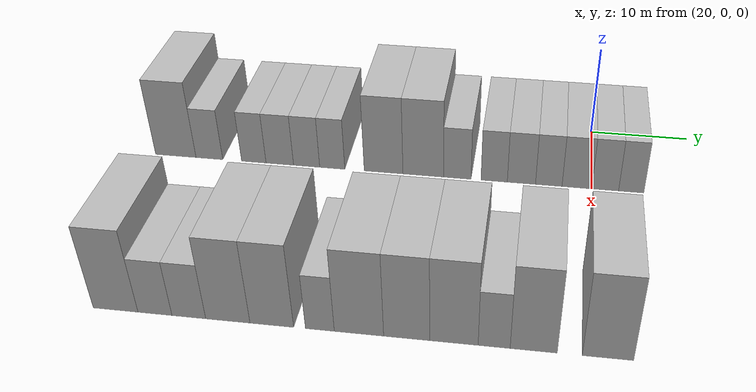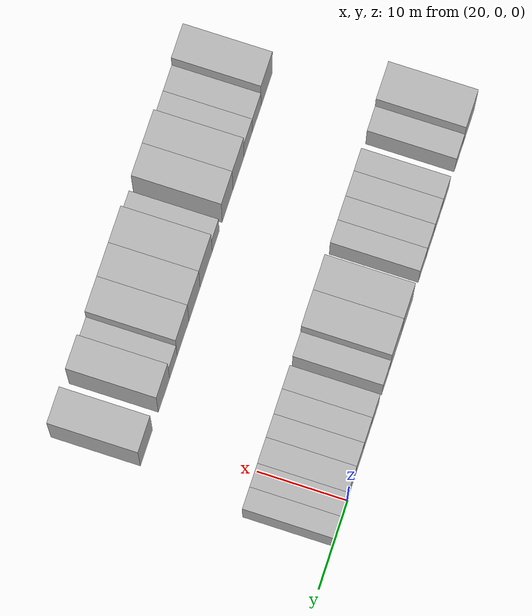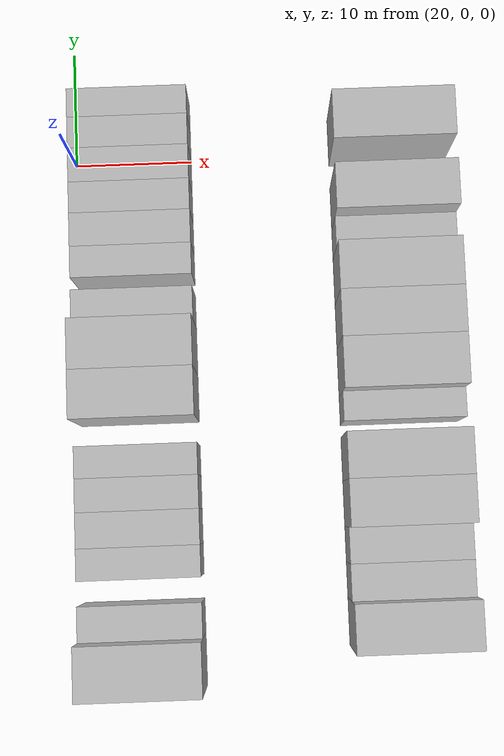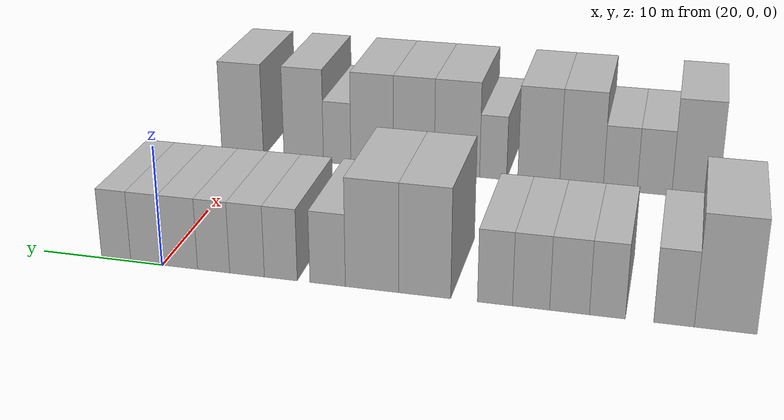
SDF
<sdf version="1.6">
 <world name="default">
  <model name="building_36">
   <static>1</static>
   <pose>25.0000 -42.6026 0 0.000000 0.000000 0.000000</pose>
   <link name="link">
    <pose>0 0 4.50 0 0 0</pose>
    <collision name="collision"><geometry><box><size>10.0000 4.3273 9.0000</size></box></geometry></collision>
    <visual name="visual">
     <cast_shadows>0</cast_shadows>
     <geometry><box><size>10.0000 4.3273 9.0000</size></box></geometry>
     <material>
      <script>
       <uri>model://HANNAS_wall/materials/scripts</uri>
       <uri>model://HANNAS_wall/materials/textures</uri>
       <name>vrc/HANNAS_wall</name>
      </script>
     </material>
    </visual>
   </link>
  </model>
  <model name="building_37">
   <static>1</static>
   <pose>25.0000 -39.0143 0 0.000000 0.000000 0.000000</pose>
   <link name="link">
    <pose>0 0 3.00 0 0 0</pose>
    <collision name="collision"><geometry><box><size>10.0000 2.8494 6.0000</size></box></geometry></collision>
    <visual name="visual">
     <cast_shadows>0</cast_shadows>
     <geometry><box><size>10.0000 2.8494 6.0000</size></box></geometry>
     <material>
      <script>
       <uri>model://HANNAS_wall/materials/scripts</uri>
       <uri>model://HANNAS_wall/materials/textures</uri>
       <name>vrc/HANNAS_wall</name>
      </script>
     </material>
    </visual>
   </link>
  </model>
  <model name="building_38">
   <static>1</static>
   <pose>25.0000 -34.3015 0 0.000000 0.000000 0.000000</pose>
   <link name="link">
    <pose>0 0 3.00 0 0 0</pose>
    <collision name="collision"><geometry><box><size>10.0000 2.5761 6.0000</size></box></geometry></collision>
    <visual name="visual">
     <cast_shadows>0</cast_shadows>
     <geometry><box><size>10.0000 2.5761 6.0000</size></box></geometry>
     <material>
      <script>
       <uri>model://HANNAS_wall/materials/scripts</uri>
       <uri>model://HANNAS_wall/materials/textures</uri>
       <name>vrc/HANNAS_wall</name>
      </script>
     </material>
    </visual>
   </link>
  </model>
  <model name="building_39">
   <static>1</static>
   <pose>25.0000 -31.5714 0 0.000000 0.000000 0.000000</pose>
   <link name="link">
    <pose>0 0 3.00 0 0 0</pose>
    <collision name="collision"><geometry><box><size>10.0000 2.8842 6.0000</size></box></geometry></collision>
    <visual name="visual">
     <cast_shadows>0</cast_shadows>
     <geometry><box><size>10.0000 2.8842 6.0000</size></box></geometry>
     <material>
      <script>
       <uri>model://HANNAS_wall/materials/scripts</uri>
       <uri>model://HANNAS_wall/materials/textures</uri>
       <name>vrc/HANNAS_wall</name>
      </script>
     </material>
    </visual>
   </link>
  </model>
  <model name="building_40">
   <static>1</static>
   <pose>25.0000 -28.7676 0 0.000000 0.000000 0.000000</pose>
   <link name="link">
    <pose>0 0 3.00 0 0 0</pose>
    <collision name="collision"><geometry><box><size>10.0000 2.7235 6.0000</size></box></geometry></collision>
    <visual name="visual">
     <cast_shadows>0</cast_shadows>
     <geometry><box><size>10.0000 2.7235 6.0000</size></box></geometry>
     <material>
      <script>
       <uri>model://HANNAS_wall/materials/scripts</uri>
       <uri>model://HANNAS_wall/materials/textures</uri>
       <name>vrc/HANNAS_wall</name>
      </script>
     </material>
    </visual>
   </link>
  </model>
  <model name="building_41">
   <static>1</static>
   <pose>25.0000 -26.1054 0 0.000000 0.000000 0.000000</pose>
   <link name="link">
    <pose>0 0 3.00 0 0 0</pose>
    <collision name="collision"><geometry><box><size>10.0000 2.6008 6.0000</size></box></geometry></collision>
    <visual name="visual">
     <cast_shadows>0</cast_shadows>
     <geometry><box><size>10.0000 2.6008 6.0000</size></box></geometry>
     <material>
      <script>
       <uri>model://HANNAS_wall/materials/scripts</uri>
       <uri>model://HANNAS_wall/materials/textures</uri>
       <name>vrc/HANNAS_wall</name>
      </script>
     </material>
    </visual>
   </link>
  </model>
  <model name="building_42">
   <static>1</static>
   <pose>25.0000 -20.8235 0 0.000000 0.000000 0.000000</pose>
   <link name="link">
    <pose>0 0 4.50 0 0 0</pose>
    <collision name="collision"><geometry><box><size>10.0000 3.9630 9.0000</size></box></geometry></collision>
    <visual name="visual">
     <cast_shadows>0</cast_shadows>
     <geometry><box><size>10.0000 3.9630 9.0000</size></box></geometry>
     <material>
      <script>
       <uri>model://HANNAS_wall/materials/scripts</uri>
       <uri>model://HANNAS_wall/materials/textures</uri>
       <name>vrc/HANNAS_wall</name>
      </script>
     </material>
    </visual>
   </link>
  </model>
  <model name="building_43">
   <static>1</static>
   <pose>25.0000 -16.7851 0 0.000000 0.000000 0.000000</pose>
   <link name="link">
    <pose>0 0 4.50 0 0 0</pose>
    <collision name="collision"><geometry><box><size>10.0000 4.1138 9.0000</size></box></geometry></collision>
    <visual name="visual">
     <cast_shadows>0</cast_shadows>
     <geometry><box><size>10.0000 4.1138 9.0000</size></box></geometry>
     <material>
      <script>
       <uri>model://HANNAS_wall/materials/scripts</uri>
       <uri>model://HANNAS_wall/materials/textures</uri>
       <name>vrc/HANNAS_wall</name>
      </script>
     </material>
    </visual>
   </link>
  </model>
  <model name="building_44">
   <static>1</static>
   <pose>25.0000 -13.3389 0 0.000000 0.000000 0.000000</pose>
   <link name="link">
    <pose>0 0 3.00 0 0 0</pose>
    <collision name="collision"><geometry><box><size>10.0000 2.7785 6.0000</size></box></geometry></collision>
    <visual name="visual">
     <cast_shadows>0</cast_shadows>
     <geometry><box><size>10.0000 2.7785 6.0000</size></box></geometry>
     <material>
      <script>
       <uri>model://HANNAS_wall/materials/scripts</uri>
       <uri>model://HANNAS_wall/materials/textures</uri>
       <name>vrc/HANNAS_wall</name>
      </script>
     </material>
    </visual>
   </link>
  </model>
  <model name="building_45">
   <static>1</static>
   <pose>25.0000 -9.6375 0 0.000000 0.000000 0.000000</pose>
   <link name="link">
    <pose>0 0 3.00 0 0 0</pose>
    <collision name="collision"><geometry><box><size>10.0000 2.6243 6.0000</size></box></geometry></collision>
    <visual name="visual">
     <cast_shadows>0</cast_shadows>
     <geometry><box><size>10.0000 2.6243 6.0000</size></box></geometry>
     <material>
      <script>
       <uri>model://HANNAS_wall/materials/scripts</uri>
       <uri>model://HANNAS_wall/materials/textures</uri>
       <name>vrc/HANNAS_wall</name>
      </script>
     </material>
    </visual>
   </link>
  </model>
  <model name="building_46">
   <static>1</static>
   <pose>25.0000 -6.9261 0 0.000000 0.000000 0.000000</pose>
   <link name="link">
    <pose>0 0 3.00 0 0 0</pose>
    <collision name="collision"><geometry><box><size>10.0000 2.7985 6.0000</size></box></geometry></collision>
    <visual name="visual">
     <cast_shadows>0</cast_shadows>
     <geometry><box><size>10.0000 2.7985 6.0000</size></box></geometry>
     <material>
      <script>
       <uri>model://HANNAS_wall/materials/scripts</uri>
       <uri>model://HANNAS_wall/materials/textures</uri>
       <name>vrc/HANNAS_wall</name>
      </script>
     </material>
    </visual>
   </link>
  </model>
  <model name="building_47">
   <static>1</static>
   <pose>25.0000 -4.2177 0 0.000000 0.000000 0.000000</pose>
   <link name="link">
    <pose>0 0 3.00 0 0 0</pose>
    <collision name="collision"><geometry><box><size>10.0000 2.6183 6.0000</size></box></geometry></collision>
    <visual name="visual">
     <cast_shadows>0</cast_shadows>
     <geometry><box><size>10.0000 2.6183 6.0000</size></box></geometry>
     <material>
      <script>
       <uri>model://HANNAS_wall/materials/scripts</uri>
       <uri>model://HANNAS_wall/materials/textures</uri>
       <name>vrc/HANNAS_wall</name>
      </script>
     </material>
    </visual>
   </link>
  </model>
  <model name="building_48">
   <static>1</static>
   <pose>25.0000 -1.4570 0 0.000000 0.000000 0.000000</pose>
   <link name="link">
    <pose>0 0 3.00 0 0 0</pose>
    <collision name="collision"><geometry><box><size>10.0000 2.9032 6.0000</size></box></geometry></collision>
    <visual name="visual">
     <cast_shadows>0</cast_shadows>
     <geometry><box><size>10.0000 2.9032 6.0000</size></box></geometry>
     <material>
      <script>
       <uri>model://HANNAS_wall/materials/scripts</uri>
       <uri>model://HANNAS_wall/materials/textures</uri>
       <name>vrc/HANNAS_wall</name>
      </script>
     </material>
    </visual>
   </link>
  </model>
  <model name="building_49">
   <static>1</static>
   <pose>25.0000 1.3108 0 0.000000 0.000000 0.000000</pose>
   <link name="link">
    <pose>0 0 3.00 0 0 0</pose>
    <collision name="collision"><geometry><box><size>10.0000 2.6324 6.0000</size></box></geometry></collision>
    <visual name="visual">
     <cast_shadows>0</cast_shadows>
     <geometry><box><size>10.0000 2.6324 6.0000</size></box></geometry>
     <material>
      <script>
       <uri>model://HANNAS_wall/materials/scripts</uri>
       <uri>model://HANNAS_wall/materials/textures</uri>
       <name>vrc/HANNAS_wall</name>
      </script>
     </material>
    </visual>
   </link>
  </model>
  <model name="building_50">
   <static>1</static>
   <pose>25.0000 3.8533 0 0.000000 0.000000 0.000000</pose>
   <link name="link">
    <pose>0 0 3.00 0 0 0</pose>
    <collision name="collision"><geometry><box><size>10.0000 2.4526 6.0000</size></box></geometry></collision>
    <visual name="visual">
     <cast_shadows>0</cast_shadows>
     <geometry><box><size>10.0000 2.4526 6.0000</size></box></geometry>
     <material>
      <script>
       <uri>model://HANNAS_wall/materials/scripts</uri>
       <uri>model://HANNAS_wall/materials/textures</uri>
       <name>vrc/HANNAS_wall</name>
      </script>
     </material>
    </visual>
   </link>
  </model>
  <model name="building_148">
   <static>1</static>
   <pose>47.0000 -39.9713 0 0.000000 0.000000 0.000000</pose>
   <link name="link">
    <pose>0 0 4.50 0 0 0</pose>
    <collision name="collision"><geometry><box><size>10.0000 3.9518 9.0000</size></box></geometry></collision>
    <visual name="visual">
     <cast_shadows>0</cast_shadows>
     <geometry><box><size>10.0000 3.9518 9.0000</size></box></geometry>
     <material>
      <script>
       <uri>model://HANNAS_wall/materials/scripts</uri>
       <uri>model://HANNAS_wall/materials/textures</uri>
       <name>vrc/HANNAS_wall</name>
      </script>
     </material>
    </visual>
   </link>
  </model>
  <model name="building_149">
   <static>1</static>
   <pose>47.0000 -36.5074 0 0.000000 0.000000 0.000000</pose>
   <link name="link">
    <pose>0 0 3.00 0 0 0</pose>
    <collision name="collision"><geometry><box><size>10.0000 2.9760 6.0000</size></box></geometry></collision>
    <visual name="visual">
     <cast_shadows>0</cast_shadows>
     <geometry><box><size>10.0000 2.9760 6.0000</size></box></geometry>
     <material>
      <script>
       <uri>model://HANNAS_wall/materials/scripts</uri>
       <uri>model://HANNAS_wall/materials/textures</uri>
       <name>vrc/HANNAS_wall</name>
      </script>
     </material>
    </visual>
   </link>
  </model>
  <model name="building_150">
   <static>1</static>
   <pose>47.0000 -33.5532 0 0.000000 0.000000 0.000000</pose>
   <link name="link">
    <pose>0 0 3.00 0 0 0</pose>
    <collision name="collision"><geometry><box><size>10.0000 2.9324 6.0000</size></box></geometry></collision>
    <visual name="visual">
     <cast_shadows>0</cast_shadows>
     <geometry><box><size>10.0000 2.9324 6.0000</size></box></geometry>
     <material>
      <script>
       <uri>model://HANNAS_wall/materials/scripts</uri>
       <uri>model://HANNAS_wall/materials/textures</uri>
       <name>vrc/HANNAS_wall</name>
      </script>
     </material>
    </visual>
   </link>
  </model>
  <model name="building_151">
   <static>1</static>
   <pose>47.0000 -30.1807 0 0.000000 0.000000 0.000000</pose>
   <link name="link">
    <pose>0 0 4.50 0 0 0</pose>
    <collision name="collision"><geometry><box><size>10.0000 3.8127 9.0000</size></box></geometry></collision>
    <visual name="visual">
     <cast_shadows>0</cast_shadows>
     <geometry><box><size>10.0000 3.8127 9.0000</size></box></geometry>
     <material>
      <script>
       <uri>model://HANNAS_wall/materials/scripts</uri>
       <uri>model://HANNAS_wall/materials/textures</uri>
       <name>vrc/HANNAS_wall</name>
      </script>
     </material>
    </visual>
   </link>
  </model>
  <model name="building_152">
   <static>1</static>
   <pose>47.0000 -26.4099 0 0.000000 0.000000 0.000000</pose>
   <link name="link">
    <pose>0 0 4.50 0 0 0</pose>
    <collision name="collision"><geometry><box><size>10.0000 3.7288 9.0000</size></box></geometry></collision>
    <visual name="visual">
     <cast_shadows>0</cast_shadows>
     <geometry><box><size>10.0000 3.7288 9.0000</size></box></geometry>
     <material>
      <script>
       <uri>model://HANNAS_wall/materials/scripts</uri>
       <uri>model://HANNAS_wall/materials/textures</uri>
       <name>vrc/HANNAS_wall</name>
      </script>
     </material>
    </visual>
   </link>
  </model>
  <model name="building_153">
   <static>1</static>
   <pose>47.0000 -22.3298 0 0.000000 0.000000 0.000000</pose>
   <link name="link">
    <pose>0 0 3.00 0 0 0</pose>
    <collision name="collision"><geometry><box><size>10.0000 2.4315 6.0000</size></box></geometry></collision>
    <visual name="visual">
     <cast_shadows>0</cast_shadows>
     <geometry><box><size>10.0000 2.4315 6.0000</size></box></geometry>
     <material>
      <script>
       <uri>model://HANNAS_wall/materials/scripts</uri>
       <uri>model://HANNAS_wall/materials/textures</uri>
       <name>vrc/HANNAS_wall</name>
      </script>
     </material>
    </visual>
   </link>
  </model>
  <model name="building_154">
   <static>1</static>
   <pose>47.0000 -19.0511 0 0.000000 0.000000 0.000000</pose>
   <link name="link">
    <pose>0 0 4.50 0 0 0</pose>
    <collision name="collision"><geometry><box><size>10.0000 4.1259 9.0000</size></box></geometry></collision>
    <visual name="visual">
     <cast_shadows>0</cast_shadows>
     <geometry><box><size>10.0000 4.1259 9.0000</size></box></geometry>
     <material>
      <script>
       <uri>model://HANNAS_wall/materials/scripts</uri>
       <uri>model://HANNAS_wall/materials/textures</uri>
       <name>vrc/HANNAS_wall</name>
      </script>
     </material>
    </visual>
   </link>
  </model>
  <model name="building_155">
   <static>1</static>
   <pose>47.0000 -15.0838 0 0.000000 0.000000 0.000000</pose>
   <link name="link">
    <pose>0 0 4.50 0 0 0</pose>
    <collision name="collision"><geometry><box><size>10.0000 3.8087 9.0000</size></box></geometry></collision>
    <visual name="visual">
     <cast_shadows>0</cast_shadows>
     <geometry><box><size>10.0000 3.8087 9.0000</size></box></geometry>
     <material>
      <script>
       <uri>model://HANNAS_wall/materials/scripts</uri>
       <uri>model://HANNAS_wall/materials/textures</uri>
       <name>vrc/HANNAS_wall</name>
      </script>
     </material>
    </visual>
   </link>
  </model>
  <model name="building_156">
   <static>1</static>
   <pose>47.0000 -11.1948 0 0.000000 0.000000 0.000000</pose>
   <link name="link">
    <pose>0 0 4.50 0 0 0</pose>
    <collision name="collision"><geometry><box><size>10.0000 3.9692 9.0000</size></box></geometry></collision>
    <visual name="visual">
     <cast_shadows>0</cast_shadows>
     <geometry><box><size>10.0000 3.9692 9.0000</size></box></geometry>
     <material>
      <script>
       <uri>model://HANNAS_wall/materials/scripts</uri>
       <uri>model://HANNAS_wall/materials/textures</uri>
       <name>vrc/HANNAS_wall</name>
      </script>
     </material>
    </visual>
   </link>
  </model>
  <model name="building_157">
   <static>1</static>
   <pose>47.0000 -7.9119 0 0.000000 0.000000 0.000000</pose>
   <link name="link">
    <pose>0 0 3.00 0 0 0</pose>
    <collision name="collision"><geometry><box><size>10.0000 2.5965 6.0000</size></box></geometry></collision>
    <visual name="visual">
     <cast_shadows>0</cast_shadows>
     <geometry><box><size>10.0000 2.5965 6.0000</size></box></geometry>
     <material>
      <script>
       <uri>model://HANNAS_wall/materials/scripts</uri>
       <uri>model://HANNAS_wall/materials/textures</uri>
       <name>vrc/HANNAS_wall</name>
      </script>
     </material>
    </visual>
   </link>
  </model>
  <model name="building_158">
   <static>1</static>
   <pose>47.0000 -4.7181 0 0.000000 0.000000 0.000000</pose>
   <link name="link">
    <pose>0 0 4.50 0 0 0</pose>
    <collision name="collision"><geometry><box><size>10.0000 3.7911 9.0000</size></box></geometry></collision>
    <visual name="visual">
     <cast_shadows>0</cast_shadows>
     <geometry><box><size>10.0000 3.7911 9.0000</size></box></geometry>
     <material>
      <script>
       <uri>model://HANNAS_wall/materials/scripts</uri>
       <uri>model://HANNAS_wall/materials/textures</uri>
       <name>vrc/HANNAS_wall</name>
      </script>
     </material>
    </visual>
   </link>
  </model>
  <model name="building_159">
   <static>1</static>
   <pose>47.0000 1.2127 0 0.000000 0.000000 0.000000</pose>
   <link name="link">
    <pose>0 0 4.50 0 0 0</pose>
    <collision name="collision"><geometry><box><size>10.0000 4.0705 9.0000</size></box></geometry></collision>
    <visual name="visual">
     <cast_shadows>0</cast_shadows>
     <geometry><box><size>10.0000 4.0705 9.0000</size></box></geometry>
     <material>
      <script>
       <uri>model://HANNAS_wall/materials/scripts</uri>
       <uri>model://HANNAS_wall/materials/textures</uri>
       <name>vrc/HANNAS_wall</name>
      </script>
     </material>
    </visual>
   </link>
  </model>
 </world>
</sdf>
